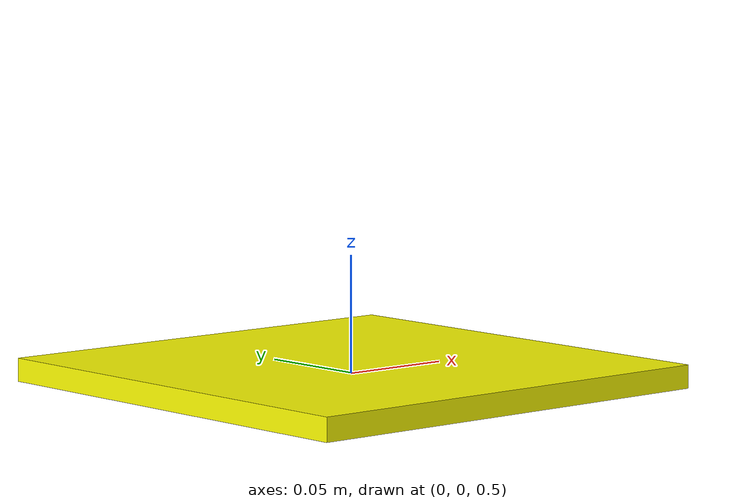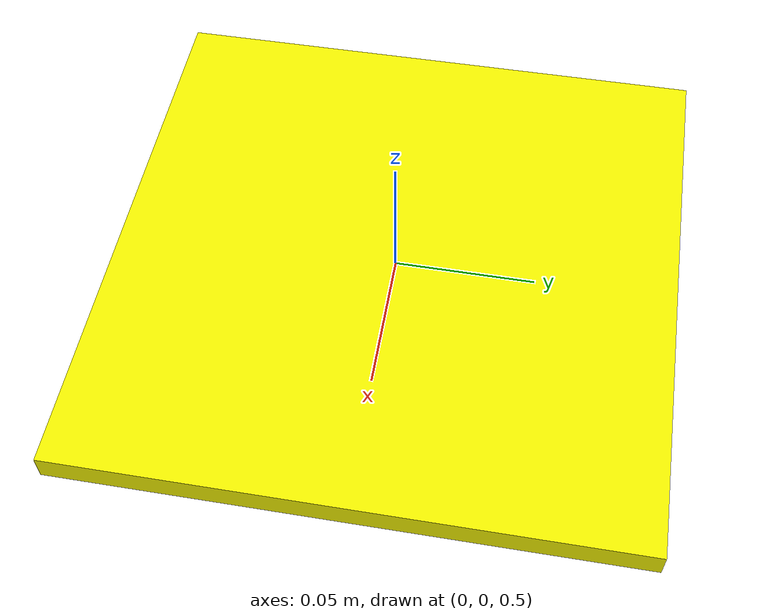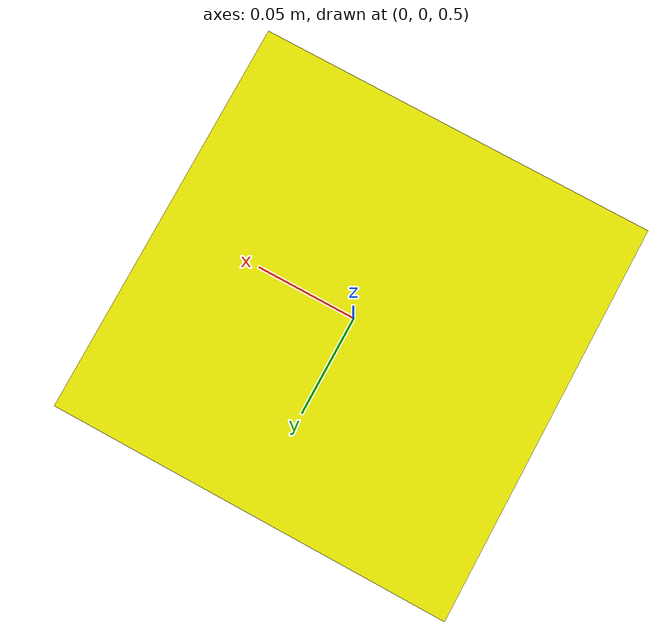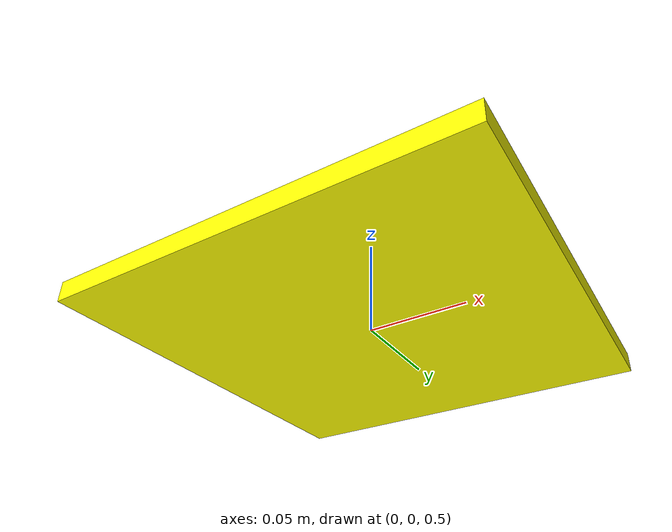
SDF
<sdf version="1.8">
  <model name="apriltag">
    <link name="link">
      <pose>0 0 0.5 0 0 0</pose>
      <visual name="vis">
        <geometry>
          <box><size>0.2 0.2 0.01</size></box>
        </geometry>
        <material><ambient>1 1 0 1</ambient></material>
      </visual>
    </link>
    <static>true</static>
  </model>
</sdf>
